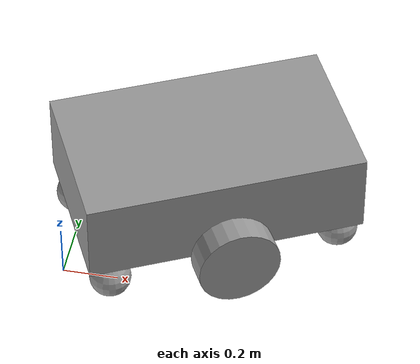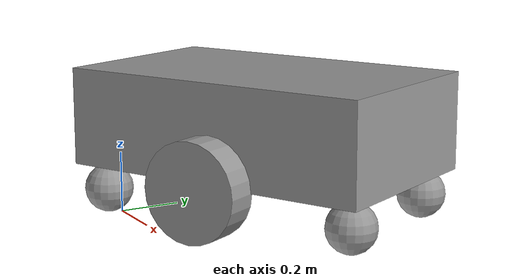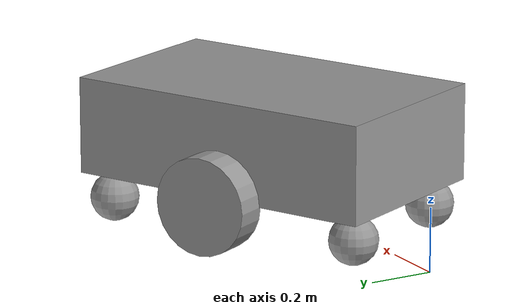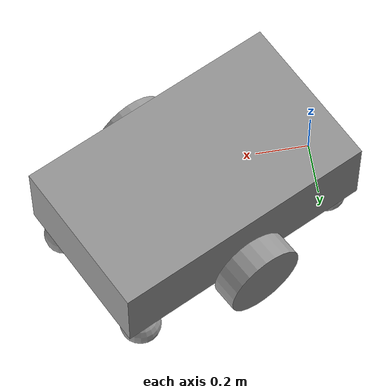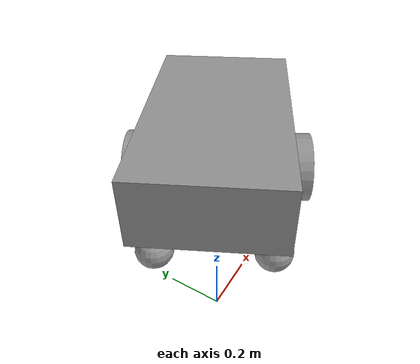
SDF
<?xml version='1.0'?>
<sdf version='1.6'>
  <model name='carA'>
    <link name='base_link'>
      <pose frame=''>0.000768 0.000259 0.092793 0 0 -0.041586</pose>
      <inertial>
        <mass>1</mass>
        <inertia>
          <ixx>0.166667</ixx>
          <ixy>0</ixy>
          <ixz>0</ixz>
          <iyy>0.166667</iyy>
          <iyz>0</iyz>
          <izz>0.166667</izz>
        </inertia>
        <pose frame=''>0 0 0 0 -0 0</pose>
      </inertial>
      <gravity>1</gravity>
      <self_collide>0</self_collide>
      <kinematic>0</kinematic>
      <visual name='visual'>
        <pose frame=''>0 0 0 0 -0 0</pose>
        <geometry>
          <box>
            <size>1 0.6 0.3</size>
          </box>
        </geometry>
        <material>
          <lighting>1</lighting>
          <script>
            <uri>file://media/materials/scripts/gazebo.material</uri>
            <name>Gazebo/Grey</name>
          </script>
          <ambient>0.3 0.3 0.3 1</ambient>
          <diffuse>0.7 0.7 0.7 1</diffuse>
          <specular>0.01 0.01 0.01 1</specular>
          <emissive>0 0 0 1</emissive>
          <shader type='vertex'>
            <normal_map>__default__</normal_map>
          </shader>
        </material>
        <cast_shadows>1</cast_shadows>
        <transparency>0</transparency>
      </visual>
      <collision name='collision'>
        <laser_retro>0</laser_retro>
        <max_contacts>10</max_contacts>
        <pose frame=''>0 0 0 0 -0 0</pose>
        <geometry>
          <box>
            <size>1 0.6 0.3</size>
          </box>
        </geometry>
        <surface>
          <friction>
            <ode>
              <mu>1</mu>
              <mu2>1</mu2>
              <fdir1>0 0 0</fdir1>
              <slip1>0</slip1>
              <slip2>0</slip2>
            </ode>
            <torsional>
              <coefficient>1</coefficient>
              <patch_radius>0</patch_radius>
              <surface_radius>0</surface_radius>
              <use_patch_radius>1</use_patch_radius>
              <ode>
                <slip>0</slip>
              </ode>
            </torsional>
          </friction>
          <bounce>
            <restitution_coefficient>0</restitution_coefficient>
            <threshold>1e+06</threshold>
          </bounce>
          <contact>
            <collide_without_contact>0</collide_without_contact>
            <collide_without_contact_bitmask>1</collide_without_contact_bitmask>
            <collide_bitmask>1</collide_bitmask>
            <ode>
              <soft_cfm>0</soft_cfm>
              <soft_erp>0.2</soft_erp>
              <kp>1e+13</kp>
              <kd>1</kd>
              <max_vel>0.01</max_vel>
              <min_depth>0</min_depth>
            </ode>
            <bullet>
              <split_impulse>1</split_impulse>
              <split_impulse_penetration_threshold>-0.01</split_impulse_penetration_threshold>
              <soft_cfm>0</soft_cfm>
              <soft_erp>0.2</soft_erp>
              <kp>1e+13</kp>
              <kd>1</kd>
            </bullet>
          </contact>
        </surface>
      </collision>
    </link>

    <link name='link_1'>
      <pose frame=''>-0.424232 -0.224741 -0.132207 0 -0 0</pose>
      <inertial>
        <mass>1</mass>
        <inertia>
          <ixx>0.1</ixx>
          <ixy>0</ixy>
          <ixz>0</ixz>
          <iyy>0.1</iyy>
          <iyz>0</iyz>
          <izz>0.1</izz>
        </inertia>
        <pose frame=''>0 0 0 0 -0 0</pose>
      </inertial>
      <gravity>1</gravity>
      <self_collide>0</self_collide>
      <kinematic>0</kinematic>
      <visual name='visual'>
        <pose frame=''>0 0 0 0 -0 0</pose>
        <geometry>
          <sphere>
            <radius>0.075</radius>
          </sphere>
        </geometry>
        <material>
          <lighting>1</lighting>
          <script>
            <uri>file://media/materials/scripts/gazebo.material</uri>
            <name>Gazebo/Grey</name>
          </script>
          <ambient>0.3 0.3 0.3 1</ambient>
          <diffuse>0.7 0.7 0.7 1</diffuse>
          <specular>0.01 0.01 0.01 1</specular>
          <emissive>0 0 0 1</emissive>
          <shader type='vertex'>
            <normal_map>__default__</normal_map>
          </shader>
        </material>
        <cast_shadows>1</cast_shadows>
        <transparency>0</transparency>
      </visual>
      <collision name='collision'>
        <laser_retro>0</laser_retro>
        <max_contacts>10</max_contacts>
        <pose frame=''>0 0 0 0 -0 0</pose>
        <geometry>
          <sphere>
            <radius>0.075</radius>
          </sphere>
        </geometry>
        <surface>
          <friction>
            <ode>
              <mu>1</mu>
              <mu2>1</mu2>
              <fdir1>0 0 0</fdir1>
              <slip1>0</slip1>
              <slip2>0</slip2>
            </ode>
            <torsional>
              <coefficient>1</coefficient>
              <patch_radius>0</patch_radius>
              <surface_radius>0</surface_radius>
              <use_patch_radius>1</use_patch_radius>
              <ode>
                <slip>0</slip>
              </ode>
            </torsional>
          </friction>
          <bounce>
            <restitution_coefficient>0</restitution_coefficient>
            <threshold>1e+06</threshold>
          </bounce>
          <contact>
            <collide_without_contact>0</collide_without_contact>
            <collide_without_contact_bitmask>1</collide_without_contact_bitmask>
            <collide_bitmask>1</collide_bitmask>
            <ode>
              <soft_cfm>0</soft_cfm>
              <soft_erp>0.2</soft_erp>
              <kp>1e+13</kp>
              <kd>1</kd>
              <max_vel>0.01</max_vel>
              <min_depth>0</min_depth>
            </ode>
            <bullet>
              <split_impulse>1</split_impulse>
              <split_impulse_penetration_threshold>-0.01</split_impulse_penetration_threshold>
              <soft_cfm>0</soft_cfm>
              <soft_erp>0.2</soft_erp>
              <kp>1e+13</kp>
              <kd>1</kd>
            </bullet>
          </contact>
        </surface>
      </collision>
    </link>

    <link name='link_1_clone'>
      <pose frame=''>-0.424232 0.225259 -0.132207 0 -0 0</pose>
      <inertial>
        <mass>1</mass>
        <inertia>
          <ixx>0.1</ixx>
          <ixy>0</ixy>
          <ixz>0</ixz>
          <iyy>0.1</iyy>
          <iyz>0</iyz>
          <izz>0.1</izz>
        </inertia>
        <pose frame=''>0 0 0 0 -0 0</pose>
      </inertial>
      <self_collide>0</self_collide>
      <kinematic>0</kinematic>
      <visual name='visual'>
        <pose frame=''>0 0 0 0 -0 0</pose>
        <geometry>
          <sphere>
            <radius>0.075</radius>
          </sphere>
        </geometry>
        <material>
          <lighting>1</lighting>
          <script>
            <uri>file://media/materials/scripts/gazebo.material</uri>
            <name>Gazebo/Grey</name>
          </script>
          <ambient>0.3 0.3 0.3 1</ambient>
          <diffuse>0.7 0.7 0.7 1</diffuse>
          <specular>0.01 0.01 0.01 1</specular>
          <emissive>0 0 0 1</emissive>
          <shader type='vertex'>
            <normal_map>__default__</normal_map>
          </shader>
        </material>
        <cast_shadows>1</cast_shadows>
        <transparency>0</transparency>
      </visual>
      <collision name='collision'>
        <laser_retro>0</laser_retro>
        <max_contacts>10</max_contacts>
        <pose frame=''>0 0 0 0 -0 0</pose>
        <geometry>
          <sphere>
            <radius>0.075</radius>
          </sphere>
        </geometry>
        <surface>
          <friction>
            <ode>
              <mu>1</mu>
              <mu2>1</mu2>
              <fdir1>0 0 0</fdir1>
              <slip1>0</slip1>
              <slip2>0</slip2>
            </ode>
            <torsional>
              <coefficient>1</coefficient>
              <patch_radius>0</patch_radius>
              <surface_radius>0</surface_radius>
              <use_patch_radius>1</use_patch_radius>
              <ode>
                <slip>0</slip>
              </ode>
            </torsional>
          </friction>
          <bounce>
            <restitution_coefficient>0</restitution_coefficient>
            <threshold>1e+06</threshold>
          </bounce>
          <contact>
            <collide_without_contact>0</collide_without_contact>
            <collide_without_contact_bitmask>1</collide_without_contact_bitmask>
            <collide_bitmask>1</collide_bitmask>
            <ode>
              <soft_cfm>0</soft_cfm>
              <soft_erp>0.2</soft_erp>
              <kp>1e+13</kp>
              <kd>1</kd>
              <max_vel>0.01</max_vel>
              <min_depth>0</min_depth>
            </ode>
            <bullet>
              <split_impulse>1</split_impulse>
              <split_impulse_penetration_threshold>-0.01</split_impulse_penetration_threshold>
              <soft_cfm>0</soft_cfm>
              <soft_erp>0.2</soft_erp>
              <kp>1e+13</kp>
              <kd>1</kd>
            </bullet>
          </contact>
        </surface>
      </collision>
    </link>

    <link name='link_1_clone_0'>
      <pose frame=''>0.425768 -0.224741 -0.132207 0 -0 0</pose>
      <inertial>
        <mass>1</mass>
        <inertia>
          <ixx>0.1</ixx>
          <ixy>0</ixy>
          <ixz>0</ixz>
          <iyy>0.1</iyy>
          <iyz>0</iyz>
          <izz>0.1</izz>
        </inertia>
        <pose frame=''>0 0 0 0 -0 0</pose>
      </inertial>
      <self_collide>0</self_collide>
      <kinematic>0</kinematic>
      <visual name='visual'>
        <pose frame=''>0 0 0 0 -0 0</pose>
        <geometry>
          <sphere>
            <radius>0.075</radius>
          </sphere>
        </geometry>
        <material>
          <lighting>1</lighting>
          <script>
            <uri>file://media/materials/scripts/gazebo.material</uri>
            <name>Gazebo/Grey</name>
          </script>
          <ambient>0.3 0.3 0.3 1</ambient>
          <diffuse>0.7 0.7 0.7 1</diffuse>
          <specular>0.01 0.01 0.01 1</specular>
          <emissive>0 0 0 1</emissive>
          <shader type='vertex'>
            <normal_map>__default__</normal_map>
          </shader>
        </material>
        <cast_shadows>1</cast_shadows>
        <transparency>0</transparency>
      </visual>
      <collision name='collision'>
        <laser_retro>0</laser_retro>
        <max_contacts>10</max_contacts>
        <pose frame=''>0 0 0 0 -0 0</pose>
        <geometry>
          <sphere>
            <radius>0.075</radius>
          </sphere>
        </geometry>
        <surface>
          <friction>
            <ode>
              <mu>1</mu>
              <mu2>1</mu2>
              <fdir1>0 0 0</fdir1>
              <slip1>0</slip1>
              <slip2>0</slip2>
            </ode>
            <torsional>
              <coefficient>1</coefficient>
              <patch_radius>0</patch_radius>
              <surface_radius>0</surface_radius>
              <use_patch_radius>1</use_patch_radius>
              <ode>
                <slip>0</slip>
              </ode>
            </torsional>
          </friction>
          <bounce>
            <restitution_coefficient>0</restitution_coefficient>
            <threshold>1e+06</threshold>
          </bounce>
          <contact>
            <collide_without_contact>0</collide_without_contact>
            <collide_without_contact_bitmask>1</collide_without_contact_bitmask>
            <collide_bitmask>1</collide_bitmask>
            <ode>
              <soft_cfm>0</soft_cfm>
              <soft_erp>0.2</soft_erp>
              <kp>1e+13</kp>
              <kd>1</kd>
              <max_vel>0.01</max_vel>
              <min_depth>0</min_depth>
            </ode>
            <bullet>
              <split_impulse>1</split_impulse>
              <split_impulse_penetration_threshold>-0.01</split_impulse_penetration_threshold>
              <soft_cfm>0</soft_cfm>
              <soft_erp>0.2</soft_erp>
              <kp>1e+13</kp>
              <kd>1</kd>
            </bullet>
          </contact>
        </surface>
      </collision>
    </link>

    <link name='link_1_clone_1'>
      <pose frame=''>0.425768 0.225259 -0.132207 0 -0 0</pose>
      <inertial>
        <mass>1</mass>
        <inertia>
          <ixx>0.1</ixx>
          <ixy>0</ixy>
          <ixz>0</ixz>
          <iyy>0.1</iyy>
          <iyz>0</iyz>
          <izz>0.1</izz>
        </inertia>
        <pose frame=''>0 0 0 0 -0 0</pose>
      </inertial>
      <self_collide>0</self_collide>
      <kinematic>0</kinematic>
      <visual name='visual'>
        <pose frame=''>0 0 0 0 -0 0</pose>
        <geometry>
          <sphere>
            <radius>0.075</radius>
          </sphere>
        </geometry>
        <material>
          <lighting>1</lighting>
          <script>
            <uri>file://media/materials/scripts/gazebo.material</uri>
            <name>Gazebo/Grey</name>
          </script>
          <ambient>0.3 0.3 0.3 1</ambient>
          <diffuse>0.7 0.7 0.7 1</diffuse>
          <specular>0.01 0.01 0.01 1</specular>
          <emissive>0 0 0 1</emissive>
          <shader type='vertex'>
            <normal_map>__default__</normal_map>
          </shader>
        </material>
        <cast_shadows>1</cast_shadows>
        <transparency>0</transparency>
      </visual>
      <collision name='collision'>
        <laser_retro>0</laser_retro>
        <max_contacts>10</max_contacts>
        <pose frame=''>0 0 0 0 -0 0</pose>
        <geometry>
          <sphere>
            <radius>0.075</radius>
          </sphere>
        </geometry>
        <surface>
          <friction>
            <ode>
              <mu>1</mu>
              <mu2>1</mu2>
              <fdir1>0 0 0</fdir1>
              <slip1>0</slip1>
              <slip2>0</slip2>
            </ode>
            <torsional>
              <coefficient>1</coefficient>
              <patch_radius>0</patch_radius>
              <surface_radius>0</surface_radius>
              <use_patch_radius>1</use_patch_radius>
              <ode>
                <slip>0</slip>
              </ode>
            </torsional>
          </friction>
          <bounce>
            <restitution_coefficient>0</restitution_coefficient>
            <threshold>1e+06</threshold>
          </bounce>
          <contact>
            <collide_without_contact>0</collide_without_contact>
            <collide_without_contact_bitmask>1</collide_without_contact_bitmask>
            <collide_bitmask>1</collide_bitmask>
            <ode>
              <soft_cfm>0</soft_cfm>
              <soft_erp>0.2</soft_erp>
              <kp>1e+13</kp>
              <kd>1</kd>
              <max_vel>0.01</max_vel>
              <min_depth>0</min_depth>
            </ode>
            <bullet>
              <split_impulse>1</split_impulse>
              <split_impulse_penetration_threshold>-0.01</split_impulse_penetration_threshold>
              <soft_cfm>0</soft_cfm>
              <soft_erp>0.2</soft_erp>
              <kp>1e+13</kp>
              <kd>1</kd>
            </bullet>
          </contact>
        </surface>
      </collision>
    </link>

    <link name='left_wheel'>
      <pose frame=''>0.000768 -0.349741 -0.057207 1.5707 -0 0</pose>
      <inertial>
        <mass>1</mass>
        <inertia>
          <ixx>0.145833</ixx>
          <ixy>0</ixy>
          <ixz>0</ixz>
          <iyy>0.145833</iyy>
          <iyz>0</iyz>
          <izz>0.125</izz>
        </inertia>
        <pose frame=''>0 0 0 0 -0 0</pose>
      </inertial>
      <gravity>1</gravity>
      <self_collide>0</self_collide>
      <kinematic>0</kinematic>
      <visual name='visual'>
        <pose frame=''>0 0 0 0 -0 0</pose>
        <geometry>
          <cylinder>
            <radius>0.15</radius>
            <length>0.1</length>
          </cylinder>
        </geometry>
        <material>
          <lighting>1</lighting>
          <script>
            <uri>file://media/materials/scripts/gazebo.material</uri>
            <name>Gazebo/Grey</name>
          </script>
          <ambient>0.3 0.3 0.3 1</ambient>
          <diffuse>0.7 0.7 0.7 1</diffuse>
          <specular>0.01 0.01 0.01 1</specular>
          <emissive>0 0 0 1</emissive>
          <shader type='vertex'>
            <normal_map>__default__</normal_map>
          </shader>
        </material>
        <cast_shadows>1</cast_shadows>
        <transparency>0</transparency>
      </visual>
      <collision name='collision'>
        <laser_retro>0</laser_retro>
        <max_contacts>10</max_contacts>
        <pose frame=''>0 0 0 0 -0 0</pose>
        <geometry>
          <cylinder>
            <radius>0.15</radius>
            <length>0.1</length>
          </cylinder>
        </geometry>
        <surface>
          <friction>
            <ode>
              <mu>1</mu>
              <mu2>1</mu2>
              <fdir1>0 0 0</fdir1>
              <slip1>0</slip1>
              <slip2>0</slip2>
            </ode>
            <torsional>
              <coefficient>1</coefficient>
              <patch_radius>0</patch_radius>
              <surface_radius>0</surface_radius>
              <use_patch_radius>1</use_patch_radius>
              <ode>
                <slip>0</slip>
              </ode>
            </torsional>
          </friction>
          <bounce>
            <restitution_coefficient>0</restitution_coefficient>
            <threshold>1e+06</threshold>
          </bounce>
          <contact>
            <collide_without_contact>0</collide_without_contact>
            <collide_without_contact_bitmask>1</collide_without_contact_bitmask>
            <collide_bitmask>1</collide_bitmask>
            <ode>
              <soft_cfm>0</soft_cfm>
              <soft_erp>0.2</soft_erp>
              <kp>1e+13</kp>
              <kd>1</kd>
              <max_vel>0.01</max_vel>
              <min_depth>0</min_depth>
            </ode>
            <bullet>
              <split_impulse>1</split_impulse>
              <split_impulse_penetration_threshold>-0.01</split_impulse_penetration_threshold>
              <soft_cfm>0</soft_cfm>
              <soft_erp>0.2</soft_erp>
              <kp>1e+13</kp>
              <kd>1</kd>
            </bullet>
          </contact>
        </surface>
      </collision>
    </link>

    <link name='right_wheel'>
      <pose frame=''>0.000768 0.350259 -0.057207 1.5707 -0 0</pose>
      <inertial>
        <mass>1</mass>
        <inertia>
          <ixx>0.145833</ixx>
          <ixy>0</ixy>
          <ixz>0</ixz>
          <iyy>0.145833</iyy>
          <iyz>0</iyz>
          <izz>0.125</izz>
        </inertia>
        <pose frame=''>0 0 0 0 -0 0</pose>
      </inertial>
      <self_collide>0</self_collide>
      <kinematic>0</kinematic>
      <visual name='visual'>
        <pose frame=''>0 0 0 0 -0 0</pose>
        <geometry>
          <cylinder>
            <radius>0.15</radius>
            <length>0.1</length>
          </cylinder>
        </geometry>
        <material>
          <lighting>1</lighting>
          <script>
            <uri>file://media/materials/scripts/gazebo.material</uri>
            <name>Gazebo/Grey</name>
          </script>
          <ambient>0.3 0.3 0.3 1</ambient>
          <diffuse>0.7 0.7 0.7 1</diffuse>
          <specular>0.01 0.01 0.01 1</specular>
          <emissive>0 0 0 1</emissive>
          <shader type='vertex'>
            <normal_map>__default__</normal_map>
          </shader>
        </material>
        <cast_shadows>1</cast_shadows>
        <transparency>0</transparency>
      </visual>
      <collision name='collision'>
        <laser_retro>0</laser_retro>
        <max_contacts>10</max_contacts>
        <pose frame=''>0 0 0 0 -0 0</pose>
        <geometry>
          <cylinder>
            <radius>0.15</radius>
            <length>0.1</length>
          </cylinder>
        </geometry>
        <surface>
          <friction>
            <ode>
              <mu>1</mu>
              <mu2>1</mu2>
              <fdir1>0 0 0</fdir1>
              <slip1>0</slip1>
              <slip2>0</slip2>
            </ode>
            <torsional>
              <coefficient>1</coefficient>
              <patch_radius>0</patch_radius>
              <surface_radius>0</surface_radius>
              <use_patch_radius>1</use_patch_radius>
              <ode>
                <slip>0</slip>
              </ode>
            </torsional>
          </friction>
          <bounce>
            <restitution_coefficient>0</restitution_coefficient>
            <threshold>1e+06</threshold>
          </bounce>
          <contact>
            <collide_without_contact>0</collide_without_contact>
            <collide_without_contact_bitmask>1</collide_without_contact_bitmask>
            <collide_bitmask>1</collide_bitmask>
            <ode>
              <soft_cfm>0</soft_cfm>
              <soft_erp>0.2</soft_erp>
              <kp>1e+13</kp>
              <kd>1</kd>
              <max_vel>0.01</max_vel>
              <min_depth>0</min_depth>
            </ode>
            <bullet>
              <split_impulse>1</split_impulse>
              <split_impulse_penetration_threshold>-0.01</split_impulse_penetration_threshold>
              <soft_cfm>0</soft_cfm>
              <soft_erp>0.2</soft_erp>
              <kp>1e+13</kp>
              <kd>1</kd>
            </bullet>
          </contact>
        </surface>
      </collision>
    </link>

      <link name='front_hokuyo'>
        <gravity>0</gravity>
        <inertial>
          <mass>0.1</mass>
        </inertial>
        <visual name='visual'>
          <geometry>
            <mesh>
              <uri>model://hokuyo/meshes/hokuyo.dae</uri>
            </mesh>
          </geometry>
        </visual>
        <sensor name='laser' type='ray'>
          <pose frame=''>0.01 0 0.03 0 -0 0</pose>
          <ray>
            <scan>
              <horizontal>
                <samples>640</samples>
                <resolution>1</resolution>
                <min_angle>-2.26889</min_angle>
                <max_angle>2.2689</max_angle>
              </horizontal>
            </scan>
            <range>
              <min>0.08</min>
              <max>10</max>
              <resolution>0.01</resolution>
            </range>
          </ray>
          <plugin name='laser' filename='libRayPlugin.so'/>
          <always_on>1</always_on>
          <update_rate>30</update_rate>
          <visualize>1</visualize>
        </sensor>
      </link>
      <pose frame=''>0.474213 0.272554 0.275969 0 -0 0.49433</pose>

      <link name='rear_hokuyo'>
        <gravity>0</gravity>
        <inertial>
          <mass>0.1</mass>
        </inertial>
        <visual name='visual'>
          <geometry>
            <mesh>
              <uri>model://hokuyo/meshes/hokuyo.dae</uri>
            </mesh>
          </geometry>
        </visual>
        <sensor name='laser' type='ray'>
          <pose frame=''>0.01 0 0.03 0 -0 0</pose>
          <ray>
            <scan>
              <horizontal>
                <samples>640</samples>
                <resolution>1</resolution>
                <min_angle>-2.26889</min_angle>
                <max_angle>2.2689</max_angle>
              </horizontal>
            </scan>
            <range>
              <min>0.08</min>
              <max>10</max>
              <resolution>0.01</resolution>
            </range>
          </ray>
          <plugin name='laser' filename='libRayPlugin.so'/>
          <always_on>1</always_on>
          <update_rate>30</update_rate>
          <visualize>1</visualize>
        </sensor>
      </link>
      <pose frame=''>-0.479587 -0.274367 0.27448 0 -0 0</pose>

    <joint name='link_0_JOINT_0' type='ball'>
      <parent>base_link</parent>
      <child>link_1</child>
      <pose frame=''>0 0 0 0 -0 0</pose>
      <physics>
        <ode>
          <limit>
            <cfm>0</cfm>
            <erp>0.2</erp>
          </limit>
          <suspension>
            <cfm>0</cfm>
            <erp>0.2</erp>
          </suspension>
        </ode>
      </physics>
    </joint>
    <joint name='link_0_JOINT_1' type='ball'>
      <parent>base_link</parent>
      <child>link_1_clone</child>
      <pose frame=''>0 0 0 0 -0 0</pose>
      <physics>
        <ode>
          <limit>
            <cfm>0</cfm>
            <erp>0.2</erp>
          </limit>
          <suspension>
            <cfm>0</cfm>
            <erp>0.2</erp>
          </suspension>
        </ode>
      </physics>
    </joint>
    <joint name='link_0_JOINT_2' type='ball'>
      <parent>base_link</parent>
      <child>link_1_clone_0</child>
      <pose frame=''>0 0 0 0 -0 0</pose>
      <physics>
        <ode>
          <limit>
            <cfm>0</cfm>
            <erp>0.2</erp>
          </limit>
          <suspension>
            <cfm>0</cfm>
            <erp>0.2</erp>
          </suspension>
        </ode>
      </physics>
    </joint>
    <joint name='link_0_JOINT_3' type='ball'>
      <parent>base_link</parent>
      <child>link_1_clone_1</child>
      <pose frame=''>0 0 0 0 -0 0</pose>
      <physics>
        <ode>
          <limit>
            <cfm>0</cfm>
            <erp>0.2</erp>
          </limit>
          <suspension>
            <cfm>0</cfm>
            <erp>0.2</erp>
          </suspension>
        </ode>
      </physics>
    </joint>
    <joint name='link_0_JOINT_4' type='revolute'>
      <parent>base_link</parent>
      <child>left_wheel</child>
      <pose frame=''>0 0 0 0 -0 0</pose>
      <axis>
        <xyz>1 0 0</xyz>
        <use_parent_model_frame>0</use_parent_model_frame>
        <limit>
          <lower>-1.79769e+308</lower>
          <upper>1.79769e+308</upper>
          <effort>-1</effort>
          <velocity>-1</velocity>
        </limit>
        <dynamics>
          <spring_reference>0</spring_reference>
          <spring_stiffness>0</spring_stiffness>
          <damping>0</damping>
        </dynamics>
      </axis>
      <physics>
        <ode>
          <limit>
            <cfm>0</cfm>
            <erp>0.2</erp>
          </limit>
          <suspension>
            <cfm>0</cfm>
            <erp>0.2</erp>
          </suspension>
        </ode>
      </physics>
    </joint>

    <joint name='link_0_JOINT_5' type='revolute'>
      <parent>base_link</parent>
      <child>right_wheel</child>
      <pose frame=''>0 0 0 0 -0 0</pose>
      <axis>
        <xyz>1 0 0</xyz>
        <use_parent_model_frame>0</use_parent_model_frame>
        <limit>
          <lower>-1.79769e+308</lower>
          <upper>1.79769e+308</upper>
          <effort>-1</effort>
          <velocity>-1</velocity>
        </limit>
        <dynamics>
          <spring_reference>0</spring_reference>
          <spring_stiffness>0</spring_stiffness>
          <damping>0</damping>
        </dynamics>
      </axis>
      <physics>
        <ode>
          <limit>
            <cfm>0</cfm>
            <erp>0.2</erp>
          </limit>
          <suspension>
            <cfm>0</cfm>
            <erp>0.2</erp>
          </suspension>
        </ode>
      </physics>
    </joint>
    <joint name='link_0_JOINT_7' type='fixed'>
      <parent>base_link</parent>
      <child>front_hokuyo</child>
      <pose frame=''>0 0 0 0 -0 0</pose>
      <physics>
        <ode>
          <limit>
            <cfm>0</cfm>
            <erp>0.2</erp>
          </limit>
          <suspension>
            <cfm>0</cfm>
            <erp>0.2</erp>
          </suspension>
        </ode>
      </physics>
    </joint>
    <joint name='link_0_JOINT_8' type='fixed'>
      <parent>base_link</parent>
      <child>rear_hokuyo</child>
      <pose frame=''>0 0 0 0 -0 0</pose>
      <physics>
        <ode>
          <limit>
            <cfm>0</cfm>
            <erp>0.2</erp>
          </limit>
          <suspension>
            <cfm>0</cfm>
            <erp>0.2</erp>
          </suspension>
        </ode>
      </physics>
    </joint>
    <static>0</static>
    <allow_auto_disable>1</allow_auto_disable>
  </model>
</sdf>
